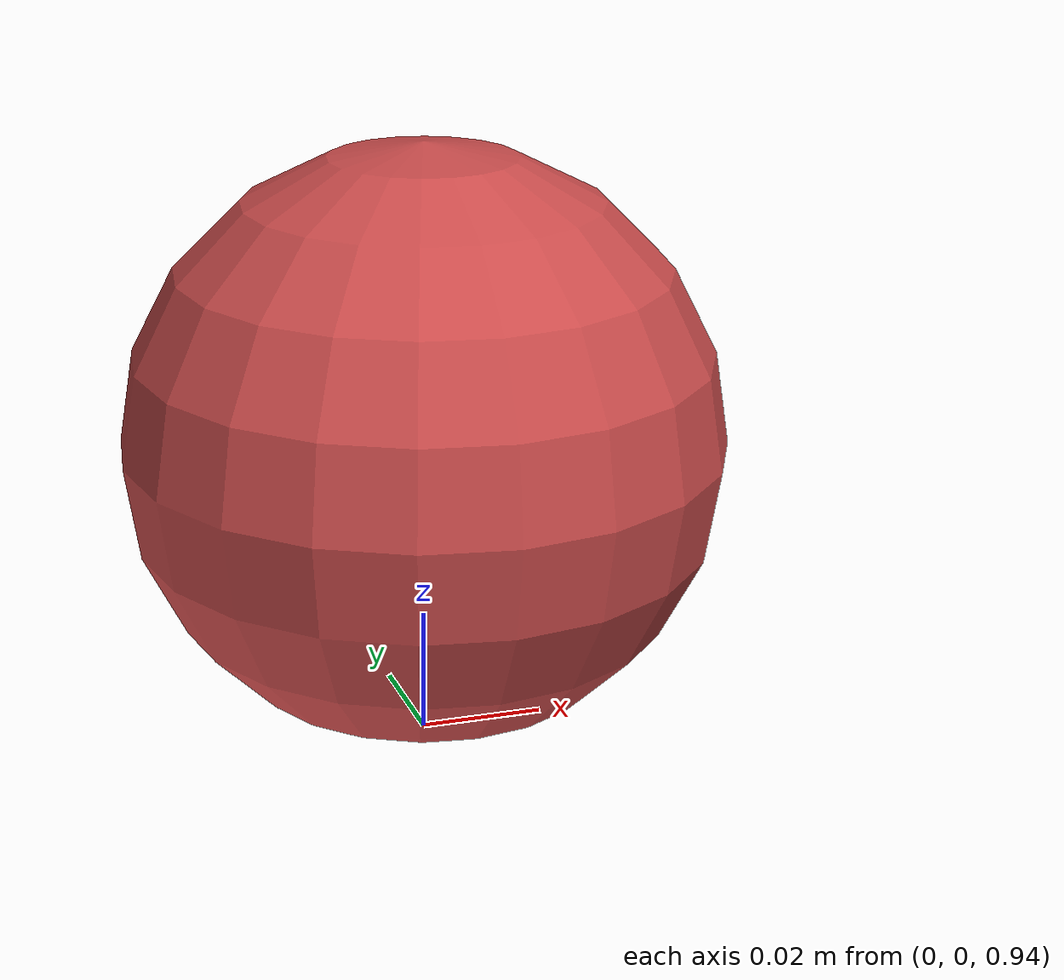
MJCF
<mujoco model="throw_000">
  <option timestep="0.001" gravity="0 0 -9.81"/>

  <visual>
    <headlight ambient="0.5 0.5 0.5"/>
  </visual>

  <asset>
    <texture name="grid" type="2d" builtin="checker" width="512" height="512" rgb1="0.2 0.3 0.4" rgb2="0.3 0.4 0.5"/>
    <material name="grid" texture="grid" texrepeat="1 1" reflectance="0.2"/>
    <material name="finger" rgba="0.8 0.3 0.3 1.0"/>
  </asset>

  <worldbody>
    <!-- Ground plane -->
    <geom name="floor" type="plane" size="2 2 0.1" material="grid"
          condim="6" friction="0.5536246763583925 0.005 0.0001" solref="0.02 1.8588177716261594"/>

    <!-- Sphere -->
    <body name="fingertip" pos="0 0 0.989613514569451">
      <freejoint/>
      <geom name="finger" type="sphere" size="0.04757251711589311" mass="0.39608130595193086" material="finger"
            condim="6" friction="0.5536246763583925 0.005 0.0001" solref="0.02 1.8588177716261594"/>
      <site name="contact_site" pos="0 0 0" size="0.001"/>
    </body>
  </worldbody>

  <sensor>
    <touch name="finger_touch" site="contact_site"/>
    <framepos name="finger_pos" objtype="site" objname="contact_site"/>
    <framequat name="finger_quat" objtype="site" objname="contact_site"/>
    <framelinvel name="finger_vel" objtype="site" objname="contact_site"/>
  </sensor>
</mujoco>
